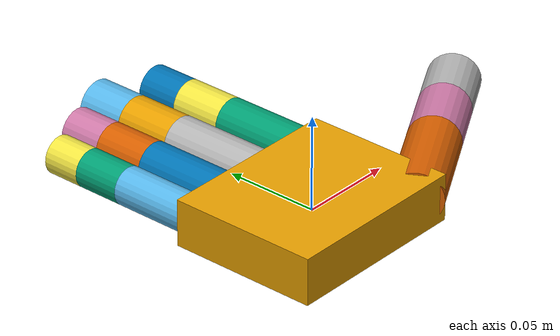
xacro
<?xml version='1.0'?>

<!-- choose a name space and start xacro -->
<robot name="hand" xmlns:xacro="http://www.ros.org/wiki/xacro">

  <!-- Include controllers, macros and parameters -->
  <xacro:include filename="$(find simulation_environment)/models/hand/hand.gazebo"/>
  <xacro:include filename="$(find simulation_environment)/models/hand/macros.xacro"/>
  <xacro:include filename="$(find simulation_environment)/models/hand/parameter.xacro"/>

  <!-- Define the base link for the hand -->
  <link name="base_link">
    <pose>0 0 ${y_base/2} ${pi/2} 0 0</pose>
    <!-- Define inertial system for the hand base -->
    <inertial>
      <mass value="${m_base}"/>
      <xacro:box_inertia m="${m_base}" x="${x_base}" y="${y_base}" z="${z_base}"/>
    </inertial>
    <!-- Define collision sorrounding box -->
    <!-- Define visualization structure -->
    <visual name="base_link_visual">
	  <origin xyz="0 0 0" rpy=" 0 0 0"/>
      <geometry>
        <box size="${x_base} ${y_base} ${z_base}"/>
      </geometry>
    </visual>
  </link>

  <!-- Add the fingers -->
  <xacro:finger prefix="pinkie_finger" parent="base_link" length1="${pinkie_l1}" length2="${pinkie_l2}" length3="${pinkie_l3}"
      radius="${pinkie_r}" density="${density}" base_xyz="${-x_base/2 + pinkie_r} ${y_base/2} 0" base_rpy="${-pi/2} 0 0"/>
  <xacro:finger prefix="ring_finger" parent="base_link" length1="${ring_l1}" length2="${ring_l2}" length3="${ring_l3}"
      radius="${ring_r}" density="${density}" base_xyz="${-x_base/2 + 2*pinkie_r + ring_r + 0.002} ${y_base/2} 0" base_rpy="${-pi/2} 0 0"/>
  <xacro:finger prefix="middle_finger" parent="base_link" length1="${middle_l1}" length2="${middle_l2}" length3="${middle_l3}"
      radius="${middle_r}" density="${density}" base_xyz="${-x_base/2 + 2*pinkie_r + 2*ring_r + middle_r + 0.003} ${y_base/2} 0" base_rpy="${-pi/2} 0 0"/>
  <xacro:finger prefix="index_finger" parent="base_link" length1="${index_l1}" length2="${index_l2}" length3="${index_l3}"
      radius="${index_r}" density="${density}" base_xyz="${x_base/2 - index_r} ${y_base/2} 0" base_rpy="${-pi/2} 0 0"/>

  <!-- Add the thumb -->
  <xacro:finger prefix="thumb" parent="base_link" length1="${thumb_l1}" length2="${thumb_l2}" length3="${thumb_l3}"
      radius="${thumb_r}" density="${density}" base_xyz="${x_base/2 - 0.707*thumb_r} ${-y_base/2 + 0.707*thumb_r} 0" base_rpy="${-pi/2} ${-pi/4} ${-pi/3}"/>

 </robot>

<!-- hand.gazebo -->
<robot xmlns:xacro="http://www.ros.org/wiki/xacro">
  <xacro:include filename="$(find simulation_environment)/models/hand/parameter.xacro" />

  <!-- Add the method for joint movements -->
  <gazebo>
    <plugin name="force_joint" filename="libforce_joint.so"/>
  </gazebo>

  <!-- Add method for hand movements -->
  <gazebo>
    <plugin name="set_imu_data" filename="libset_imu_data.so"/>
  </gazebo>

</robot>

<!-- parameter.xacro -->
<robot xmlns:xacro="http://www.ros.org/wiki/xacro">

  <!-- General paramters -->
  <xacro:property name="pi" value="3.1415" />

  <!-- Parameter for the hand base -->
  <xacro:property name="x_base" value="0.10" />
  <xacro:property name="y_base" value="0.08" />
  <xacro:property name="z_base" value="0.025" />
  <xacro:property name="m_base" value="1.0" />

  <!-- Density for the fingers -->
  <xacro:property name="density" value="5000" />

  <!-- pinkie finger -->
  <xacro:property name="pinkie_l1" value="0.04" />
  <xacro:property name="pinkie_l2" value="0.025" />
  <xacro:property name="pinkie_l3" value="0.02" />
  <xacro:property name="pinkie_r" value="0.010" />

  <!-- ring finger -->
  <xacro:property name="ring_l1" value="0.045" />
  <xacro:property name="ring_l2" value="0.0275" />
  <xacro:property name="ring_l3" value="0.0225" />
  <xacro:property name="ring_r" value="0.01125" />

  <!-- middle finger -->
  <xacro:property name="middle_l1" value="0.05" />
  <xacro:property name="middle_l2" value="0.03" />
  <xacro:property name="middle_l3" value="0.025" />
  <xacro:property name="middle_r" value="0.0125" />

  <!-- index finger -->
  <xacro:property name="index_l1" value="0.045" />
  <xacro:property name="index_l2" value="0.0275" />
  <xacro:property name="index_l3" value="0.0225" />
  <xacro:property name="index_r" value="0.01125" />

  <!-- thumb -->
  <xacro:property name="thumb_l1" value="0.055" />
  <xacro:property name="thumb_l2" value="0.0325" />
  <xacro:property name="thumb_l3" value="0.03" />
  <xacro:property name="thumb_r" value="0.01375" />

</robot>

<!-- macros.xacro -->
<robot xmlns:xacro="http://www.ros.org/wiki/xacro">

  <xacro:include filename="$(find simulation_environment)/models/hand/parameter.xacro"/>

  <!-- Define inertia formulas for standard geometries -->
  <xacro:macro name="box_inertia" params="m x y z">
      <inertia
        ixx="${m*(y*y+z*z)/12}" ixy = "0" ixz = "0"
        iyy="${m*(x*x+z*z)/12}" iyz = "0"
        izz="${m*(x*x+z*z)/12}"
      />
  </xacro:macro>

  <xacro:macro name="cylinder_inertia" params="m r h">
    <inertia
      ixx="${m*(3*r*r+h*h)/12}" ixy = "0" ixz = "0"
      iyy="${m*(3*r*r+h*h)/12}" iyz = "0"
      izz="${m*r*r/2}"
    />
  </xacro:macro>

  <!-- Define a finger part -->
  <xacro:macro name="finger_part" params="prefix parent part length radius density origin_xyz origin_rpy">
	  <link name="${prefix}_link_${part}">
		<visual name="{prefix}_link_${part}_visual">
			<origin xyz="0 0 ${length/2}" rpy="0 0 0"/>
			<geometry>
				<cylinder radius="${radius}" length="${length}"/>
			</geometry>
		</visual>
		<inertial>
			<origin xyz="0 0 ${length/2}" rpy="0 0 0"/>
			<mass value="${density*length*3.1415*radius*radius}"/>
			<xacro:cylinder_inertia m="${density*length*3.1415*radius*radius}" r="${radius}" h="${length}"/>
		</inertial>
	  </link>

	  <joint name="${prefix}_joint_${part}" type="continuous">
		  <parent link="${parent}"/>
		  <child link="${prefix}_link_${part}"/>
		  <origin xyz="${origin_xyz}" rpy="${origin_rpy}"/>
	  </joint>
  </xacro:macro>

  <!-- Define the complete finger -->
  <xacro:macro name="finger" params="prefix parent length1 length2 length3 radius density base_xyz base_rpy">
		<xacro:finger_part prefix="${prefix}" parent="${parent}" part="1" length="${length1}" radius="${radius}" density="${density}" origin_xyz="${base_xyz}" origin_rpy="${base_rpy}" />
		<xacro:finger_part prefix="${prefix}" parent="${prefix}_link_1" part="2" length="${length2}" radius="${radius}" density="${density}" origin_xyz="0 0 ${length1}" origin_rpy="0 0 0"/>
		<xacro:finger_part prefix="${prefix}" parent="${prefix}_link_2" part="3" length="${length3}" radius="${radius}" density="${density}" origin_xyz="0 0 ${length2}" origin_rpy="0 0 0"/>
  </xacro:macro>

</robot>
